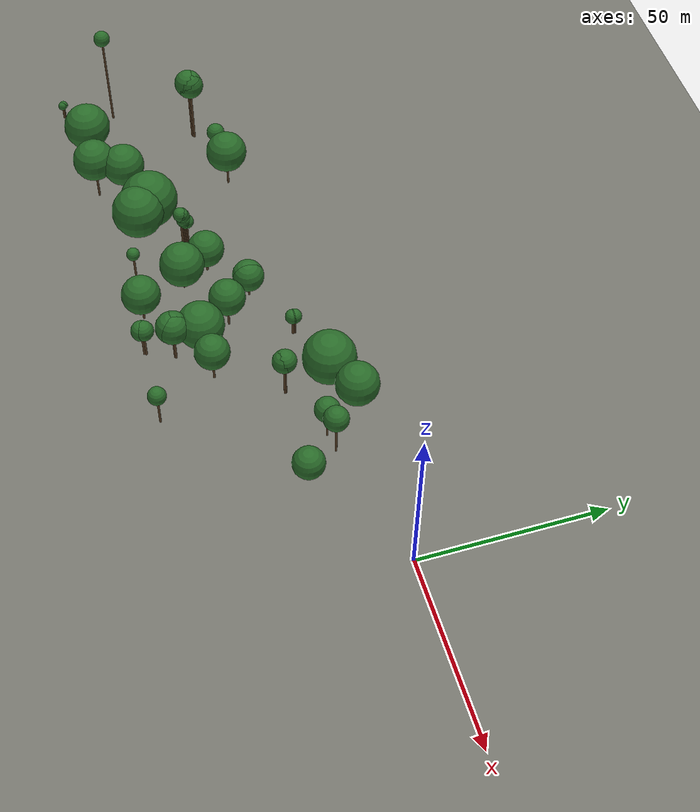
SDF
<sdf version="1.9">
 <world name="uav_arena_bk">
  <model name="ground_plane">
   <static>true</static>
   <link name="link">
    <collision name="collision">
     <geometry><plane><normal>0 0 1</normal><size>1200 1200</size></plane></geometry>
    </collision>
    <visual name="visual">
     <geometry><plane><normal>0 0 1</normal><size>1200 1200</size></plane></geometry>
     <material><ambient>0.35 0.35 0.33 1</ambient><diffuse>0.45 0.45 0.42 1</diffuse></material>
    </visual>
   </link>
  </model>
  <model name="tree_135">
   <static>true</static>
   <pose>-48.400 0.896 0 0 0 0</pose>
   <link name="link">
    <collision name="trunk_collision">
     <pose>0 0 0.995 0 0 0</pose>
     <geometry><cylinder><radius>0.30</radius><length>1.990</length></cylinder></geometry>
    </collision>
    <visual name="trunk_visual">
     <pose>0 0 0.995 0 0 0</pose>
     <geometry><cylinder><radius>0.30</radius><length>1.990</length></cylinder></geometry>
     <material><ambient>0.25 0.18 0.11 1</ambient><diffuse>0.35 0.25 0.15 1</diffuse></material>
    </visual>
    <collision name="canopy_collision">
     <pose>0 0 7.830 0 0 0</pose>
     <geometry><sphere><radius>5.840</radius></sphere></geometry>
    </collision>
    <visual name="canopy_visual">
     <pose>0 0 7.830 0 0 0</pose>
     <geometry><sphere><radius>5.840</radius></sphere></geometry>
     <material><ambient>0.10 0.28 0.10 1</ambient><diffuse>0.16 0.42 0.16 1</diffuse></material>
     <plugin filename="gz-sim-label-system" name="gz::sim::systems::Label"><label>2</label></plugin>
    </visual>
   </link>
  </model>
  <model name="tree_145">
   <static>true</static>
   <pose>-58.174 -3.552 0 0 0 0</pose>
   <link name="link">
    <collision name="trunk_collision">
     <pose>0 0 0.520 0 0 0</pose>
     <geometry><cylinder><radius>0.30</radius><length>1.040</length></cylinder></geometry>
    </collision>
    <visual name="trunk_visual">
     <pose>0 0 0.520 0 0 0</pose>
     <geometry><cylinder><radius>0.30</radius><length>1.040</length></cylinder></geometry>
     <material><ambient>0.25 0.18 0.11 1</ambient><diffuse>0.35 0.25 0.15 1</diffuse></material>
    </visual>
    <collision name="canopy_collision">
     <pose>0 0 8.200 0 0 0</pose>
     <geometry><sphere><radius>7.160</radius></sphere></geometry>
    </collision>
    <visual name="canopy_visual">
     <pose>0 0 8.200 0 0 0</pose>
     <geometry><sphere><radius>7.160</radius></sphere></geometry>
     <material><ambient>0.10 0.28 0.10 1</ambient><diffuse>0.16 0.42 0.16 1</diffuse></material>
     <plugin filename="gz-sim-label-system" name="gz::sim::systems::Label"><label>2</label></plugin>
    </visual>
   </link>
  </model>
  <model name="tree_151">
   <static>true</static>
   <pose>-74.450 -8.213 0 0 0 0</pose>
   <link name="link">
    <collision name="trunk_collision">
     <pose>0 0 2.480 0 0 0</pose>
     <geometry><cylinder><radius>0.30</radius><length>4.960</length></cylinder></geometry>
    </collision>
    <visual name="trunk_visual">
     <pose>0 0 2.480 0 0 0</pose>
     <geometry><cylinder><radius>0.30</radius><length>4.960</length></cylinder></geometry>
     <material><ambient>0.25 0.18 0.11 1</ambient><diffuse>0.35 0.25 0.15 1</diffuse></material>
    </visual>
    <collision name="canopy_collision">
     <pose>0 0 6.960 0 0 0</pose>
     <geometry><sphere><radius>2.000</radius></sphere></geometry>
    </collision>
    <visual name="canopy_visual">
     <pose>0 0 6.960 0 0 0</pose>
     <geometry><sphere><radius>2.000</radius></sphere></geometry>
     <material><ambient>0.10 0.28 0.10 1</ambient><diffuse>0.16 0.42 0.16 1</diffuse></material>
     <plugin filename="gz-sim-label-system" name="gz::sim::systems::Label"><label>2</label></plugin>
    </visual>
   </link>
  </model>
  <model name="tree_152">
   <static>true</static>
   <pose>-74.451 -8.463 0 0 0 0</pose>
   <link name="link">
    <collision name="trunk_collision">
     <pose>0 0 2.480 0 0 0</pose>
     <geometry><cylinder><radius>0.30</radius><length>4.960</length></cylinder></geometry>
    </collision>
    <visual name="trunk_visual">
     <pose>0 0 2.480 0 0 0</pose>
     <geometry><cylinder><radius>0.30</radius><length>4.960</length></cylinder></geometry>
     <material><ambient>0.25 0.18 0.11 1</ambient><diffuse>0.35 0.25 0.15 1</diffuse></material>
    </visual>
    <collision name="canopy_collision">
     <pose>0 0 6.960 0 0 0</pose>
     <geometry><sphere><radius>2.000</radius></sphere></geometry>
    </collision>
    <visual name="canopy_visual">
     <pose>0 0 6.960 0 0 0</pose>
     <geometry><sphere><radius>2.000</radius></sphere></geometry>
     <material><ambient>0.10 0.28 0.10 1</ambient><diffuse>0.16 0.42 0.16 1</diffuse></material>
     <plugin filename="gz-sim-label-system" name="gz::sim::systems::Label"><label>2</label></plugin>
    </visual>
   </link>
  </model>
  <model name="tree_153">
   <static>true</static>
   <pose>-35.452 -8.675 0 0 0 0</pose>
   <link name="link">
    <collision name="trunk_collision">
     <pose>0 0 5.345 0 0 0</pose>
     <geometry><cylinder><radius>0.30</radius><length>10.690</length></cylinder></geometry>
    </collision>
    <visual name="trunk_visual">
     <pose>0 0 5.345 0 0 0</pose>
     <geometry><cylinder><radius>0.30</radius><length>10.690</length></cylinder></geometry>
     <material><ambient>0.25 0.18 0.11 1</ambient><diffuse>0.35 0.25 0.15 1</diffuse></material>
    </visual>
    <collision name="canopy_collision">
     <pose>0 0 14.040 0 0 0</pose>
     <geometry><sphere><radius>3.350</radius></sphere></geometry>
    </collision>
    <visual name="canopy_visual">
     <pose>0 0 14.040 0 0 0</pose>
     <geometry><sphere><radius>3.350</radius></sphere></geometry>
     <material><ambient>0.10 0.28 0.10 1</ambient><diffuse>0.16 0.42 0.16 1</diffuse></material>
     <plugin filename="gz-sim-label-system" name="gz::sim::systems::Label"><label>2</label></plugin>
    </visual>
   </link>
  </model>
  <model name="tree_154">
   <static>true</static>
   <pose>-74.452 -8.713 0 0 0 0</pose>
   <link name="link">
    <collision name="trunk_collision">
     <pose>0 0 2.480 0 0 0</pose>
     <geometry><cylinder><radius>0.30</radius><length>4.960</length></cylinder></geometry>
    </collision>
    <visual name="trunk_visual">
     <pose>0 0 2.480 0 0 0</pose>
     <geometry><cylinder><radius>0.30</radius><length>4.960</length></cylinder></geometry>
     <material><ambient>0.25 0.18 0.11 1</ambient><diffuse>0.35 0.25 0.15 1</diffuse></material>
    </visual>
    <collision name="canopy_collision">
     <pose>0 0 6.960 0 0 0</pose>
     <geometry><sphere><radius>2.000</radius></sphere></geometry>
    </collision>
    <visual name="canopy_visual">
     <pose>0 0 6.960 0 0 0</pose>
     <geometry><sphere><radius>2.000</radius></sphere></geometry>
     <material><ambient>0.10 0.28 0.10 1</ambient><diffuse>0.16 0.42 0.16 1</diffuse></material>
     <plugin filename="gz-sim-label-system" name="gz::sim::systems::Label"><label>2</label></plugin>
    </visual>
   </link>
  </model>
  <model name="tree_156">
   <static>true</static>
   <pose>-40.706 -9.396 0 0 0 0</pose>
   <link name="link">
    <collision name="trunk_collision">
     <pose>0 0 3.870 0 0 0</pose>
     <geometry><cylinder><radius>0.30</radius><length>7.740</length></cylinder></geometry>
    </collision>
    <visual name="trunk_visual">
     <pose>0 0 3.870 0 0 0</pose>
     <geometry><cylinder><radius>0.30</radius><length>7.740</length></cylinder></geometry>
     <material><ambient>0.25 0.18 0.11 1</ambient><diffuse>0.35 0.25 0.15 1</diffuse></material>
    </visual>
    <collision name="canopy_collision">
     <pose>0 0 11.090 0 0 0</pose>
     <geometry><sphere><radius>3.350</radius></sphere></geometry>
    </collision>
    <visual name="canopy_visual">
     <pose>0 0 11.090 0 0 0</pose>
     <geometry><sphere><radius>3.350</radius></sphere></geometry>
     <material><ambient>0.10 0.28 0.10 1</ambient><diffuse>0.16 0.42 0.16 1</diffuse></material>
     <plugin filename="gz-sim-label-system" name="gz::sim::systems::Label"><label>2</label></plugin>
    </visual>
   </link>
  </model>
  <model name="tree_157">
   <static>true</static>
   <pose>-132.217 -11.401 0 0 0 0</pose>
   <link name="link">
    <collision name="trunk_collision">
     <pose>0 0 3.365 0 0 0</pose>
     <geometry><cylinder><radius>0.30</radius><length>6.730</length></cylinder></geometry>
    </collision>
    <visual name="trunk_visual">
     <pose>0 0 3.365 0 0 0</pose>
     <geometry><cylinder><radius>0.30</radius><length>6.730</length></cylinder></geometry>
     <material><ambient>0.25 0.18 0.11 1</ambient><diffuse>0.35 0.25 0.15 1</diffuse></material>
    </visual>
    <collision name="canopy_collision">
     <pose>0 0 12.350 0 0 0</pose>
     <geometry><sphere><radius>5.620</radius></sphere></geometry>
    </collision>
    <visual name="canopy_visual">
     <pose>0 0 12.350 0 0 0</pose>
     <geometry><sphere><radius>5.620</radius></sphere></geometry>
     <material><ambient>0.10 0.28 0.10 1</ambient><diffuse>0.16 0.42 0.16 1</diffuse></material>
     <plugin filename="gz-sim-label-system" name="gz::sim::systems::Label"><label>2</label></plugin>
    </visual>
   </link>
  </model>
  <model name="tree_158">
   <static>true</static>
   <pose>-141.971 -12.098 0 0 0 0</pose>
   <link name="link">
    <collision name="trunk_collision">
     <pose>0 0 4.155 0 0 0</pose>
     <geometry><cylinder><radius>0.30</radius><length>8.310</length></cylinder></geometry>
    </collision>
    <visual name="trunk_visual">
     <pose>0 0 4.155 0 0 0</pose>
     <geometry><cylinder><radius>0.30</radius><length>8.310</length></cylinder></geometry>
     <material><ambient>0.25 0.18 0.11 1</ambient><diffuse>0.35 0.25 0.15 1</diffuse></material>
    </visual>
    <collision name="canopy_collision">
     <pose>0 0 10.810 0 0 0</pose>
     <geometry><sphere><radius>2.500</radius></sphere></geometry>
    </collision>
    <visual name="canopy_visual">
     <pose>0 0 10.810 0 0 0</pose>
     <geometry><sphere><radius>2.500</radius></sphere></geometry>
     <material><ambient>0.10 0.28 0.10 1</ambient><diffuse>0.16 0.42 0.16 1</diffuse></material>
     <plugin filename="gz-sim-label-system" name="gz::sim::systems::Label"><label>2</label></plugin>
    </visual>
   </link>
  </model>
  <model name="tree_162">
   <static>true</static>
   <pose>-56.241 -15.812 0 0 0 0</pose>
   <link name="link">
    <collision name="trunk_collision">
     <pose>0 0 5.230 0 0 0</pose>
     <geometry><cylinder><radius>0.30</radius><length>10.460</length></cylinder></geometry>
    </collision>
    <visual name="trunk_visual">
     <pose>0 0 5.230 0 0 0</pose>
     <geometry><cylinder><radius>0.30</radius><length>10.460</length></cylinder></geometry>
     <material><ambient>0.25 0.18 0.11 1</ambient><diffuse>0.35 0.25 0.15 1</diffuse></material>
    </visual>
    <collision name="canopy_collision">
     <pose>0 0 13.590 0 0 0</pose>
     <geometry><sphere><radius>3.130</radius></sphere></geometry>
    </collision>
    <visual name="canopy_visual">
     <pose>0 0 13.590 0 0 0</pose>
     <geometry><sphere><radius>3.130</radius></sphere></geometry>
     <material><ambient>0.10 0.28 0.10 1</ambient><diffuse>0.16 0.42 0.16 1</diffuse></material>
     <plugin filename="gz-sim-label-system" name="gz::sim::systems::Label"><label>2</label></plugin>
    </visual>
   </link>
  </model>
  <model name="tree_163">
   <static>true</static>
   <pose>-56.242 -16.062 0 0 0 0</pose>
   <link name="link">
    <collision name="trunk_collision">
     <pose>0 0 5.175 0 0 0</pose>
     <geometry><cylinder><radius>0.30</radius><length>10.350</length></cylinder></geometry>
    </collision>
    <visual name="trunk_visual">
     <pose>0 0 5.175 0 0 0</pose>
     <geometry><cylinder><radius>0.30</radius><length>10.350</length></cylinder></geometry>
     <material><ambient>0.25 0.18 0.11 1</ambient><diffuse>0.35 0.25 0.15 1</diffuse></material>
    </visual>
    <collision name="canopy_collision">
     <pose>0 0 13.480 0 0 0</pose>
     <geometry><sphere><radius>3.130</radius></sphere></geometry>
    </collision>
    <visual name="canopy_visual">
     <pose>0 0 13.480 0 0 0</pose>
     <geometry><sphere><radius>3.130</radius></sphere></geometry>
     <material><ambient>0.10 0.28 0.10 1</ambient><diffuse>0.16 0.42 0.16 1</diffuse></material>
     <plugin filename="gz-sim-label-system" name="gz::sim::systems::Label"><label>2</label></plugin>
    </visual>
   </link>
  </model>
  <model name="tree_164">
   <static>true</static>
   <pose>-90.744 -16.375 0 0 0 0</pose>
   <link name="link">
    <collision name="trunk_collision">
     <pose>0 0 1.780 0 0 0</pose>
     <geometry><cylinder><radius>0.30</radius><length>3.560</length></cylinder></geometry>
    </collision>
    <visual name="trunk_visual">
     <pose>0 0 1.780 0 0 0</pose>
     <geometry><cylinder><radius>0.30</radius><length>3.560</length></cylinder></geometry>
     <material><ambient>0.25 0.18 0.11 1</ambient><diffuse>0.35 0.25 0.15 1</diffuse></material>
    </visual>
    <collision name="canopy_collision">
     <pose>0 0 7.830 0 0 0</pose>
     <geometry><sphere><radius>4.270</radius></sphere></geometry>
    </collision>
    <visual name="canopy_visual">
     <pose>0 0 7.830 0 0 0</pose>
     <geometry><sphere><radius>4.270</radius></sphere></geometry>
     <material><ambient>0.10 0.28 0.10 1</ambient><diffuse>0.16 0.42 0.16 1</diffuse></material>
     <plugin filename="gz-sim-label-system" name="gz::sim::systems::Label"><label>2</label></plugin>
    </visual>
   </link>
  </model>
  <model name="tree_165">
   <static>true</static>
   <pose>-90.494 -16.377 0 0 0 0</pose>
   <link name="link">
    <collision name="trunk_collision">
     <pose>0 0 1.780 0 0 0</pose>
     <geometry><cylinder><radius>0.30</radius><length>3.560</length></cylinder></geometry>
    </collision>
    <visual name="trunk_visual">
     <pose>0 0 1.780 0 0 0</pose>
     <geometry><cylinder><radius>0.30</radius><length>3.560</length></cylinder></geometry>
     <material><ambient>0.25 0.18 0.11 1</ambient><diffuse>0.35 0.25 0.15 1</diffuse></material>
    </visual>
    <collision name="canopy_collision">
     <pose>0 0 7.830 0 0 0</pose>
     <geometry><sphere><radius>4.270</radius></sphere></geometry>
    </collision>
    <visual name="canopy_visual">
     <pose>0 0 7.830 0 0 0</pose>
     <geometry><sphere><radius>4.270</radius></sphere></geometry>
     <material><ambient>0.10 0.28 0.10 1</ambient><diffuse>0.16 0.42 0.16 1</diffuse></material>
     <plugin filename="gz-sim-label-system" name="gz::sim::systems::Label"><label>2</label></plugin>
    </visual>
   </link>
  </model>
  <model name="tree_166">
   <static>true</static>
   <pose>-152.744 -16.290 0 0 0 0</pose>
   <link name="link">
    <collision name="trunk_collision">
     <pose>0 0 8.210 0 0 0</pose>
     <geometry><cylinder><radius>0.30</radius><length>16.420</length></cylinder></geometry>
    </collision>
    <visual name="trunk_visual">
     <pose>0 0 8.210 0 0 0</pose>
     <geometry><cylinder><radius>0.30</radius><length>16.420</length></cylinder></geometry>
     <material><ambient>0.25 0.18 0.11 1</ambient><diffuse>0.35 0.25 0.15 1</diffuse></material>
    </visual>
    <collision name="canopy_collision">
     <pose>0 0 20.140 0 0 0</pose>
     <geometry><sphere><radius>3.720</radius></sphere></geometry>
    </collision>
    <visual name="canopy_visual">
     <pose>0 0 20.140 0 0 0</pose>
     <geometry><sphere><radius>3.720</radius></sphere></geometry>
     <material><ambient>0.10 0.28 0.10 1</ambient><diffuse>0.16 0.42 0.16 1</diffuse></material>
     <plugin filename="gz-sim-label-system" name="gz::sim::systems::Label"><label>2</label></plugin>
    </visual>
   </link>
  </model>
  <model name="tree_167">
   <static>true</static>
   <pose>-153.245 -16.537 0 0 0 0</pose>
   <link name="link">
    <collision name="trunk_collision">
     <pose>0 0 8.450 0 0 0</pose>
     <geometry><cylinder><radius>0.30</radius><length>16.900</length></cylinder></geometry>
    </collision>
    <visual name="trunk_visual">
     <pose>0 0 8.450 0 0 0</pose>
     <geometry><cylinder><radius>0.30</radius><length>16.900</length></cylinder></geometry>
     <material><ambient>0.25 0.18 0.11 1</ambient><diffuse>0.35 0.25 0.15 1</diffuse></material>
    </visual>
    <collision name="canopy_collision">
     <pose>0 0 20.620 0 0 0</pose>
     <geometry><sphere><radius>3.720</radius></sphere></geometry>
    </collision>
    <visual name="canopy_visual">
     <pose>0 0 20.620 0 0 0</pose>
     <geometry><sphere><radius>3.720</radius></sphere></geometry>
     <material><ambient>0.10 0.28 0.10 1</ambient><diffuse>0.16 0.42 0.16 1</diffuse></material>
     <plugin filename="gz-sim-label-system" name="gz::sim::systems::Label"><label>2</label></plugin>
    </visual>
   </link>
  </model>
  <model name="tree_168">
   <static>true</static>
   <pose>-152.995 -16.538 0 0 0 0</pose>
   <link name="link">
    <collision name="trunk_collision">
     <pose>0 0 8.420 0 0 0</pose>
     <geometry><cylinder><radius>0.30</radius><length>16.840</length></cylinder></geometry>
    </collision>
    <visual name="trunk_visual">
     <pose>0 0 8.420 0 0 0</pose>
     <geometry><cylinder><radius>0.30</radius><length>16.840</length></cylinder></geometry>
     <material><ambient>0.25 0.18 0.11 1</ambient><diffuse>0.35 0.25 0.15 1</diffuse></material>
    </visual>
    <collision name="canopy_collision">
     <pose>0 0 20.560 0 0 0</pose>
     <geometry><sphere><radius>3.720</radius></sphere></geometry>
    </collision>
    <visual name="canopy_visual">
     <pose>0 0 20.560 0 0 0</pose>
     <geometry><sphere><radius>3.720</radius></sphere></geometry>
     <material><ambient>0.10 0.28 0.10 1</ambient><diffuse>0.16 0.42 0.16 1</diffuse></material>
     <plugin filename="gz-sim-label-system" name="gz::sim::systems::Label"><label>2</label></plugin>
    </visual>
   </link>
  </model>
  <model name="tree_169">
   <static>true</static>
   <pose>-30.498 -17.202 0 0 0 0</pose>
   <link name="link">
    <collision name="trunk_collision">
     <pose>0 0 0.590 0 0 0</pose>
     <geometry><cylinder><radius>0.30</radius><length>1.180</length></cylinder></geometry>
    </collision>
    <visual name="trunk_visual">
     <pose>0 0 0.590 0 0 0</pose>
     <geometry><cylinder><radius>0.30</radius><length>1.180</length></cylinder></geometry>
     <material><ambient>0.25 0.18 0.11 1</ambient><diffuse>0.35 0.25 0.15 1</diffuse></material>
    </visual>
    <collision name="canopy_collision">
     <pose>0 0 5.480 0 0 0</pose>
     <geometry><sphere><radius>4.300</radius></sphere></geometry>
    </collision>
    <visual name="canopy_visual">
     <pose>0 0 5.480 0 0 0</pose>
     <geometry><sphere><radius>4.300</radius></sphere></geometry>
     <material><ambient>0.10 0.28 0.10 1</ambient><diffuse>0.16 0.42 0.16 1</diffuse></material>
     <plugin filename="gz-sim-label-system" name="gz::sim::systems::Label"><label>2</label></plugin>
    </visual>
   </link>
  </model>
  <model name="tree_170">
   <static>true</static>
   <pose>-153.247 -16.787 0 0 0 0</pose>
   <link name="link">
    <collision name="trunk_collision">
     <pose>0 0 8.500 0 0 0</pose>
     <geometry><cylinder><radius>0.30</radius><length>17.000</length></cylinder></geometry>
    </collision>
    <visual name="trunk_visual">
     <pose>0 0 8.500 0 0 0</pose>
     <geometry><cylinder><radius>0.30</radius><length>17.000</length></cylinder></geometry>
     <material><ambient>0.25 0.18 0.11 1</ambient><diffuse>0.35 0.25 0.15 1</diffuse></material>
    </visual>
    <collision name="canopy_collision">
     <pose>0 0 20.720 0 0 0</pose>
     <geometry><sphere><radius>3.720</radius></sphere></geometry>
    </collision>
    <visual name="canopy_visual">
     <pose>0 0 20.720 0 0 0</pose>
     <geometry><sphere><radius>3.720</radius></sphere></geometry>
     <material><ambient>0.10 0.28 0.10 1</ambient><diffuse>0.16 0.42 0.16 1</diffuse></material>
     <plugin filename="gz-sim-label-system" name="gz::sim::systems::Label"><label>2</label></plugin>
    </visual>
   </link>
  </model>
  <model name="tree_175">
   <static>true</static>
   <pose>-82.286 -24.171 0 0 0 0</pose>
   <link name="link">
    <collision name="trunk_collision">
     <pose>0 0 3.145 0 0 0</pose>
     <geometry><cylinder><radius>0.30</radius><length>6.290</length></cylinder></geometry>
    </collision>
    <visual name="trunk_visual">
     <pose>0 0 3.145 0 0 0</pose>
     <geometry><cylinder><radius>0.30</radius><length>6.290</length></cylinder></geometry>
     <material><ambient>0.25 0.18 0.11 1</ambient><diffuse>0.35 0.25 0.15 1</diffuse></material>
    </visual>
    <collision name="canopy_collision">
     <pose>0 0 11.210 0 0 0</pose>
     <geometry><sphere><radius>4.920</radius></sphere></geometry>
    </collision>
    <visual name="canopy_visual">
     <pose>0 0 11.210 0 0 0</pose>
     <geometry><sphere><radius>4.920</radius></sphere></geometry>
     <material><ambient>0.10 0.28 0.10 1</ambient><diffuse>0.16 0.42 0.16 1</diffuse></material>
     <plugin filename="gz-sim-label-system" name="gz::sim::systems::Label"><label>2</label></plugin>
    </visual>
   </link>
  </model>
  <model name="tree_176">
   <static>true</static>
   <pose>-102.291 -25.063 0 0 0 0</pose>
   <link name="link">
    <collision name="trunk_collision">
     <pose>0 0 1.795 0 0 0</pose>
     <geometry><cylinder><radius>0.30</radius><length>3.590</length></cylinder></geometry>
    </collision>
    <visual name="trunk_visual">
     <pose>0 0 1.795 0 0 0</pose>
     <geometry><cylinder><radius>0.30</radius><length>3.590</length></cylinder></geometry>
     <material><ambient>0.25 0.18 0.11 1</ambient><diffuse>0.35 0.25 0.15 1</diffuse></material>
    </visual>
    <collision name="canopy_collision">
     <pose>0 0 8.590 0 0 0</pose>
     <geometry><sphere><radius>5.000</radius></sphere></geometry>
    </collision>
    <visual name="canopy_visual">
     <pose>0 0 8.590 0 0 0</pose>
     <geometry><sphere><radius>5.000</radius></sphere></geometry>
     <material><ambient>0.10 0.28 0.10 1</ambient><diffuse>0.16 0.42 0.16 1</diffuse></material>
     <plugin filename="gz-sim-label-system" name="gz::sim::systems::Label"><label>2</label></plugin>
    </visual>
   </link>
  </model>
  <model name="tree_180">
   <static>true</static>
   <pose>-113.056 -27.755 0 0 0 0</pose>
   <link name="link">
    <collision name="trunk_collision">
     <pose>0 0 3.445 0 0 0</pose>
     <geometry><cylinder><radius>0.30</radius><length>6.890</length></cylinder></geometry>
    </collision>
    <visual name="trunk_visual">
     <pose>0 0 3.445 0 0 0</pose>
     <geometry><cylinder><radius>0.30</radius><length>6.890</length></cylinder></geometry>
     <material><ambient>0.25 0.18 0.11 1</ambient><diffuse>0.35 0.25 0.15 1</diffuse></material>
    </visual>
    <collision name="canopy_collision">
     <pose>0 0 8.890 0 0 0</pose>
     <geometry><sphere><radius>2.000</radius></sphere></geometry>
    </collision>
    <visual name="canopy_visual">
     <pose>0 0 8.890 0 0 0</pose>
     <geometry><sphere><radius>2.000</radius></sphere></geometry>
     <material><ambient>0.10 0.28 0.10 1</ambient><diffuse>0.16 0.42 0.16 1</diffuse></material>
     <plugin filename="gz-sim-label-system" name="gz::sim::systems::Label"><label>2</label></plugin>
    </visual>
   </link>
  </model>
  <model name="tree_181">
   <static>true</static>
   <pose>-113.057 -28.005 0 0 0 0</pose>
   <link name="link">
    <collision name="trunk_collision">
     <pose>0 0 3.490 0 0 0</pose>
     <geometry><cylinder><radius>0.30</radius><length>6.980</length></cylinder></geometry>
    </collision>
    <visual name="trunk_visual">
     <pose>0 0 3.490 0 0 0</pose>
     <geometry><cylinder><radius>0.30</radius><length>6.980</length></cylinder></geometry>
     <material><ambient>0.25 0.18 0.11 1</ambient><diffuse>0.35 0.25 0.15 1</diffuse></material>
    </visual>
    <collision name="canopy_collision">
     <pose>0 0 8.980 0 0 0</pose>
     <geometry><sphere><radius>2.000</radius></sphere></geometry>
    </collision>
    <visual name="canopy_visual">
     <pose>0 0 8.980 0 0 0</pose>
     <geometry><sphere><radius>2.000</radius></sphere></geometry>
     <material><ambient>0.10 0.28 0.10 1</ambient><diffuse>0.16 0.42 0.16 1</diffuse></material>
     <plugin filename="gz-sim-label-system" name="gz::sim::systems::Label"><label>2</label></plugin>
    </visual>
   </link>
  </model>
  <model name="tree_182">
   <static>true</static>
   <pose>-113.058 -28.255 0 0 0 0</pose>
   <link name="link">
    <collision name="trunk_collision">
     <pose>0 0 3.640 0 0 0</pose>
     <geometry><cylinder><radius>0.30</radius><length>7.280</length></cylinder></geometry>
    </collision>
    <visual name="trunk_visual">
     <pose>0 0 3.640 0 0 0</pose>
     <geometry><cylinder><radius>0.30</radius><length>7.280</length></cylinder></geometry>
     <material><ambient>0.25 0.18 0.11 1</ambient><diffuse>0.35 0.25 0.15 1</diffuse></material>
    </visual>
    <collision name="canopy_collision">
     <pose>0 0 9.280 0 0 0</pose>
     <geometry><sphere><radius>2.000</radius></sphere></geometry>
    </collision>
    <visual name="canopy_visual">
     <pose>0 0 9.280 0 0 0</pose>
     <geometry><sphere><radius>2.000</radius></sphere></geometry>
     <material><ambient>0.10 0.28 0.10 1</ambient><diffuse>0.16 0.42 0.16 1</diffuse></material>
     <plugin filename="gz-sim-label-system" name="gz::sim::systems::Label"><label>2</label></plugin>
    </visual>
   </link>
  </model>
  <model name="tree_184">
   <static>true</static>
   <pose>-113.060 -28.505 0 0 0 0</pose>
   <link name="link">
    <collision name="trunk_collision">
     <pose>0 0 3.920 0 0 0</pose>
     <geometry><cylinder><radius>0.30</radius><length>7.840</length></cylinder></geometry>
    </collision>
    <visual name="trunk_visual">
     <pose>0 0 3.920 0 0 0</pose>
     <geometry><cylinder><radius>0.30</radius><length>7.840</length></cylinder></geometry>
     <material><ambient>0.25 0.18 0.11 1</ambient><diffuse>0.35 0.25 0.15 1</diffuse></material>
    </visual>
    <collision name="canopy_collision">
     <pose>0 0 9.840 0 0 0</pose>
     <geometry><sphere><radius>2.000</radius></sphere></geometry>
    </collision>
    <visual name="canopy_visual">
     <pose>0 0 9.840 0 0 0</pose>
     <geometry><sphere><radius>2.000</radius></sphere></geometry>
     <material><ambient>0.10 0.28 0.10 1</ambient><diffuse>0.16 0.42 0.16 1</diffuse></material>
     <plugin filename="gz-sim-label-system" name="gz::sim::systems::Label"><label>2</label></plugin>
    </visual>
   </link>
  </model>
  <model name="tree_185">
   <static>true</static>
   <pose>-113.061 -28.755 0 0 0 0</pose>
   <link name="link">
    <collision name="trunk_collision">
     <pose>0 0 4.780 0 0 0</pose>
     <geometry><cylinder><radius>0.30</radius><length>9.560</length></cylinder></geometry>
    </collision>
    <visual name="trunk_visual">
     <pose>0 0 4.780 0 0 0</pose>
     <geometry><cylinder><radius>0.30</radius><length>9.560</length></cylinder></geometry>
     <material><ambient>0.25 0.18 0.11 1</ambient><diffuse>0.35 0.25 0.15 1</diffuse></material>
    </visual>
    <collision name="canopy_collision">
     <pose>0 0 11.560 0 0 0</pose>
     <geometry><sphere><radius>2.000</radius></sphere></geometry>
    </collision>
    <visual name="canopy_visual">
     <pose>0 0 11.560 0 0 0</pose>
     <geometry><sphere><radius>2.000</radius></sphere></geometry>
     <material><ambient>0.10 0.28 0.10 1</ambient><diffuse>0.16 0.42 0.16 1</diffuse></material>
     <plugin filename="gz-sim-label-system" name="gz::sim::systems::Label"><label>2</label></plugin>
    </visual>
   </link>
  </model>
  <model name="tree_186">
   <static>true</static>
   <pose>-113.062 -29.005 0 0 0 0</pose>
   <link name="link">
    <collision name="trunk_collision">
     <pose>0 0 4.985 0 0 0</pose>
     <geometry><cylinder><radius>0.30</radius><length>9.970</length></cylinder></geometry>
    </collision>
    <visual name="trunk_visual">
     <pose>0 0 4.985 0 0 0</pose>
     <geometry><cylinder><radius>0.30</radius><length>9.970</length></cylinder></geometry>
     <material><ambient>0.25 0.18 0.11 1</ambient><diffuse>0.35 0.25 0.15 1</diffuse></material>
    </visual>
    <collision name="canopy_collision">
     <pose>0 0 11.970 0 0 0</pose>
     <geometry><sphere><radius>2.000</radius></sphere></geometry>
    </collision>
    <visual name="canopy_visual">
     <pose>0 0 11.970 0 0 0</pose>
     <geometry><sphere><radius>2.000</radius></sphere></geometry>
     <material><ambient>0.10 0.28 0.10 1</ambient><diffuse>0.16 0.42 0.16 1</diffuse></material>
     <plugin filename="gz-sim-label-system" name="gz::sim::systems::Label"><label>2</label></plugin>
    </visual>
   </link>
  </model>
  <model name="tree_187">
   <static>true</static>
   <pose>-113.064 -29.255 0 0 0 0</pose>
   <link name="link">
    <collision name="trunk_collision">
     <pose>0 0 5.070 0 0 0</pose>
     <geometry><cylinder><radius>0.30</radius><length>10.140</length></cylinder></geometry>
    </collision>
    <visual name="trunk_visual">
     <pose>0 0 5.070 0 0 0</pose>
     <geometry><cylinder><radius>0.30</radius><length>10.140</length></cylinder></geometry>
     <material><ambient>0.25 0.18 0.11 1</ambient><diffuse>0.35 0.25 0.15 1</diffuse></material>
    </visual>
    <collision name="canopy_collision">
     <pose>0 0 12.140 0 0 0</pose>
     <geometry><sphere><radius>2.000</radius></sphere></geometry>
    </collision>
    <visual name="canopy_visual">
     <pose>0 0 12.140 0 0 0</pose>
     <geometry><sphere><radius>2.000</radius></sphere></geometry>
     <material><ambient>0.10 0.28 0.10 1</ambient><diffuse>0.16 0.42 0.16 1</diffuse></material>
     <plugin filename="gz-sim-label-system" name="gz::sim::systems::Label"><label>2</label></plugin>
    </visual>
   </link>
  </model>
  <model name="tree_189">
   <static>true</static>
   <pose>-66.330 -32.258 0 0 0 0</pose>
   <link name="link">
    <collision name="trunk_collision">
     <pose>0 0 3.085 0 0 0</pose>
     <geometry><cylinder><radius>0.30</radius><length>6.170</length></cylinder></geometry>
    </collision>
    <visual name="trunk_visual">
     <pose>0 0 3.085 0 0 0</pose>
     <geometry><cylinder><radius>0.30</radius><length>6.170</length></cylinder></geometry>
     <material><ambient>0.25 0.18 0.11 1</ambient><diffuse>0.35 0.25 0.15 1</diffuse></material>
    </visual>
    <collision name="canopy_collision">
     <pose>0 0 10.890 0 0 0</pose>
     <geometry><sphere><radius>4.720</radius></sphere></geometry>
    </collision>
    <visual name="canopy_visual">
     <pose>0 0 10.890 0 0 0</pose>
     <geometry><sphere><radius>4.720</radius></sphere></geometry>
     <material><ambient>0.10 0.28 0.10 1</ambient><diffuse>0.16 0.42 0.16 1</diffuse></material>
     <plugin filename="gz-sim-label-system" name="gz::sim::systems::Label"><label>2</label></plugin>
    </visual>
   </link>
  </model>
  <model name="tree_190">
   <static>true</static>
   <pose>-98.082 -32.586 0 0 0 0</pose>
   <link name="link">
    <collision name="trunk_collision">
     <pose>0 0 1.690 0 0 0</pose>
     <geometry><cylinder><radius>0.30</radius><length>3.380</length></cylinder></geometry>
    </collision>
    <visual name="trunk_visual">
     <pose>0 0 1.690 0 0 0</pose>
     <geometry><cylinder><radius>0.30</radius><length>3.380</length></cylinder></geometry>
     <material><ambient>0.25 0.18 0.11 1</ambient><diffuse>0.35 0.25 0.15 1</diffuse></material>
    </visual>
    <collision name="canopy_collision">
     <pose>0 0 9.430 0 0 0</pose>
     <geometry><sphere><radius>6.050</radius></sphere></geometry>
    </collision>
    <visual name="canopy_visual">
     <pose>0 0 9.430 0 0 0</pose>
     <geometry><sphere><radius>6.050</radius></sphere></geometry>
     <material><ambient>0.10 0.28 0.10 1</ambient><diffuse>0.16 0.42 0.16 1</diffuse></material>
     <plugin filename="gz-sim-label-system" name="gz::sim::systems::Label"><label>2</label></plugin>
    </visual>
   </link>
  </model>
  <model name="tree_192">
   <static>true</static>
   <pose>-75.834 -32.956 0 0 0 0</pose>
   <link name="link">
    <collision name="trunk_collision">
     <pose>0 0 2.105 0 0 0</pose>
     <geometry><cylinder><radius>0.30</radius><length>4.210</length></cylinder></geometry>
    </collision>
    <visual name="trunk_visual">
     <pose>0 0 2.105 0 0 0</pose>
     <geometry><cylinder><radius>0.30</radius><length>4.210</length></cylinder></geometry>
     <material><ambient>0.25 0.18 0.11 1</ambient><diffuse>0.35 0.25 0.15 1</diffuse></material>
    </visual>
    <collision name="canopy_collision">
     <pose>0 0 10.570 0 0 0</pose>
     <geometry><sphere><radius>6.360</radius></sphere></geometry>
    </collision>
    <visual name="canopy_visual">
     <pose>0 0 10.570 0 0 0</pose>
     <geometry><sphere><radius>6.360</radius></sphere></geometry>
     <material><ambient>0.10 0.28 0.10 1</ambient><diffuse>0.16 0.42 0.16 1</diffuse></material>
     <plugin filename="gz-sim-label-system" name="gz::sim::systems::Label"><label>2</label></plugin>
    </visual>
   </link>
  </model>
  <model name="tree_203">
   <static>true</static>
   <pose>-123.849 -35.696 0 0 0 0</pose>
   <link name="link">
    <collision name="trunk_collision">
     <pose>0 0 0.640 0 0 0</pose>
     <geometry><cylinder><radius>0.30</radius><length>1.280</length></cylinder></geometry>
    </collision>
    <visual name="trunk_visual">
     <pose>0 0 0.640 0 0 0</pose>
     <geometry><cylinder><radius>0.30</radius><length>1.280</length></cylinder></geometry>
     <material><ambient>0.25 0.18 0.11 1</ambient><diffuse>0.35 0.25 0.15 1</diffuse></material>
    </visual>
    <collision name="canopy_collision">
     <pose>0 0 9.170 0 0 0</pose>
     <geometry><sphere><radius>7.890</radius></sphere></geometry>
    </collision>
    <visual name="canopy_visual">
     <pose>0 0 9.170 0 0 0</pose>
     <geometry><sphere><radius>7.890</radius></sphere></geometry>
     <material><ambient>0.10 0.28 0.10 1</ambient><diffuse>0.16 0.42 0.16 1</diffuse></material>
     <plugin filename="gz-sim-label-system" name="gz::sim::systems::Label"><label>2</label></plugin>
    </visual>
   </link>
  </model>
  <model name="tree_207">
   <static>true</static>
   <pose>-167.109 -37.462 0 0 0 0</pose>
   <link name="link">
    <collision name="trunk_collision">
     <pose>0 0 14.125 0 0 0</pose>
     <geometry><cylinder><radius>0.30</radius><length>28.250</length></cylinder></geometry>
    </collision>
    <visual name="trunk_visual">
     <pose>0 0 14.125 0 0 0</pose>
     <geometry><cylinder><radius>0.30</radius><length>28.250</length></cylinder></geometry>
     <material><ambient>0.25 0.18 0.11 1</ambient><diffuse>0.35 0.25 0.15 1</diffuse></material>
    </visual>
    <collision name="canopy_collision">
     <pose>0 0 30.510 0 0 0</pose>
     <geometry><sphere><radius>2.260</radius></sphere></geometry>
    </collision>
    <visual name="canopy_visual">
     <pose>0 0 30.510 0 0 0</pose>
     <geometry><sphere><radius>2.260</radius></sphere></geometry>
     <material><ambient>0.10 0.28 0.10 1</ambient><diffuse>0.16 0.42 0.16 1</diffuse></material>
     <plugin filename="gz-sim-label-system" name="gz::sim::systems::Label"><label>2</label></plugin>
    </visual>
   </link>
  </model>
  <model name="tree_210">
   <static>true</static>
   <pose>-119.121 -39.722 0 0 0 0</pose>
   <link name="link">
    <collision name="trunk_collision">
     <pose>0 0 1.565 0 0 0</pose>
     <geometry><cylinder><radius>0.30</radius><length>3.130</length></cylinder></geometry>
    </collision>
    <visual name="trunk_visual">
     <pose>0 0 1.565 0 0 0</pose>
     <geometry><cylinder><radius>0.30</radius><length>3.130</length></cylinder></geometry>
     <material><ambient>0.25 0.18 0.11 1</ambient><diffuse>0.35 0.25 0.15 1</diffuse></material>
    </visual>
    <collision name="canopy_collision">
     <pose>0 0 10.290 0 0 0</pose>
     <geometry><sphere><radius>7.160</radius></sphere></geometry>
    </collision>
    <visual name="canopy_visual">
     <pose>0 0 10.290 0 0 0</pose>
     <geometry><sphere><radius>7.160</radius></sphere></geometry>
     <material><ambient>0.10 0.28 0.10 1</ambient><diffuse>0.16 0.42 0.16 1</diffuse></material>
     <plugin filename="gz-sim-label-system" name="gz::sim::systems::Label"><label>2</label></plugin>
    </visual>
   </link>
  </model>
  <model name="tree_211">
   <static>true</static>
   <pose>-75.623 -40.207 0 0 0 0</pose>
   <link name="link">
    <collision name="trunk_collision">
     <pose>0 0 4.105 0 0 0</pose>
     <geometry><cylinder><radius>0.30</radius><length>8.210</length></cylinder></geometry>
    </collision>
    <visual name="trunk_visual">
     <pose>0 0 4.105 0 0 0</pose>
     <geometry><cylinder><radius>0.30</radius><length>8.210</length></cylinder></geometry>
     <material><ambient>0.25 0.18 0.11 1</ambient><diffuse>0.35 0.25 0.15 1</diffuse></material>
    </visual>
    <collision name="canopy_collision">
     <pose>0 0 12.530 0 0 0</pose>
     <geometry><sphere><radius>4.320</radius></sphere></geometry>
    </collision>
    <visual name="canopy_visual">
     <pose>0 0 12.530 0 0 0</pose>
     <geometry><sphere><radius>4.320</radius></sphere></geometry>
     <material><ambient>0.10 0.28 0.10 1</ambient><diffuse>0.16 0.42 0.16 1</diffuse></material>
     <plugin filename="gz-sim-label-system" name="gz::sim::systems::Label"><label>2</label></plugin>
    </visual>
   </link>
  </model>
  <model name="tree_212">
   <static>true</static>
   <pose>-75.373 -40.209 0 0 0 0</pose>
   <link name="link">
    <collision name="trunk_collision">
     <pose>0 0 4.105 0 0 0</pose>
     <geometry><cylinder><radius>0.30</radius><length>8.210</length></cylinder></geometry>
    </collision>
    <visual name="trunk_visual">
     <pose>0 0 4.105 0 0 0</pose>
     <geometry><cylinder><radius>0.30</radius><length>8.210</length></cylinder></geometry>
     <material><ambient>0.25 0.18 0.11 1</ambient><diffuse>0.35 0.25 0.15 1</diffuse></material>
    </visual>
    <collision name="canopy_collision">
     <pose>0 0 12.530 0 0 0</pose>
     <geometry><sphere><radius>4.320</radius></sphere></geometry>
    </collision>
    <visual name="canopy_visual">
     <pose>0 0 12.530 0 0 0</pose>
     <geometry><sphere><radius>4.320</radius></sphere></geometry>
     <material><ambient>0.10 0.28 0.10 1</ambient><diffuse>0.16 0.42 0.16 1</diffuse></material>
     <plugin filename="gz-sim-label-system" name="gz::sim::systems::Label"><label>2</label></plugin>
    </visual>
   </link>
  </model>
  <model name="tree_214">
   <static>true</static>
   <pose>-134.623 -40.138 0 0 0 0</pose>
   <link name="link">
    <collision name="trunk_collision">
     <pose>0 0 3.760 0 0 0</pose>
     <geometry><cylinder><radius>0.30</radius><length>7.520</length></cylinder></geometry>
    </collision>
    <visual name="trunk_visual">
     <pose>0 0 3.760 0 0 0</pose>
     <geometry><cylinder><radius>0.30</radius><length>7.520</length></cylinder></geometry>
     <material><ambient>0.25 0.18 0.11 1</ambient><diffuse>0.35 0.25 0.15 1</diffuse></material>
    </visual>
    <collision name="canopy_collision">
     <pose>0 0 13.280 0 0 0</pose>
     <geometry><sphere><radius>5.760</radius></sphere></geometry>
    </collision>
    <visual name="canopy_visual">
     <pose>0 0 13.280 0 0 0</pose>
     <geometry><sphere><radius>5.760</radius></sphere></geometry>
     <material><ambient>0.10 0.28 0.10 1</ambient><diffuse>0.16 0.42 0.16 1</diffuse></material>
     <plugin filename="gz-sim-label-system" name="gz::sim::systems::Label"><label>2</label></plugin>
    </visual>
   </link>
  </model>
  <model name="tree_215">
   <static>true</static>
   <pose>-75.624 -40.457 0 0 0 0</pose>
   <link name="link">
    <collision name="trunk_collision">
     <pose>0 0 4.100 0 0 0</pose>
     <geometry><cylinder><radius>0.30</radius><length>8.200</length></cylinder></geometry>
    </collision>
    <visual name="trunk_visual">
     <pose>0 0 4.100 0 0 0</pose>
     <geometry><cylinder><radius>0.30</radius><length>8.200</length></cylinder></geometry>
     <material><ambient>0.25 0.18 0.11 1</ambient><diffuse>0.35 0.25 0.15 1</diffuse></material>
    </visual>
    <collision name="canopy_collision">
     <pose>0 0 12.520 0 0 0</pose>
     <geometry><sphere><radius>4.320</radius></sphere></geometry>
    </collision>
    <visual name="canopy_visual">
     <pose>0 0 12.520 0 0 0</pose>
     <geometry><sphere><radius>4.320</radius></sphere></geometry>
     <material><ambient>0.10 0.28 0.10 1</ambient><diffuse>0.16 0.42 0.16 1</diffuse></material>
     <plugin filename="gz-sim-label-system" name="gz::sim::systems::Label"><label>2</label></plugin>
    </visual>
   </link>
  </model>
  <model name="tree_216">
   <static>true</static>
   <pose>-104.895 -44.299 0 0 0 0</pose>
   <link name="link">
    <collision name="trunk_collision">
     <pose>0 0 4.025 0 0 0</pose>
     <geometry><cylinder><radius>0.30</radius><length>8.050</length></cylinder></geometry>
    </collision>
    <visual name="trunk_visual">
     <pose>0 0 4.025 0 0 0</pose>
     <geometry><cylinder><radius>0.30</radius><length>8.050</length></cylinder></geometry>
     <material><ambient>0.25 0.18 0.11 1</ambient><diffuse>0.35 0.25 0.15 1</diffuse></material>
    </visual>
    <collision name="canopy_collision">
     <pose>0 0 9.850 0 0 0</pose>
     <geometry><sphere><radius>1.800</radius></sphere></geometry>
    </collision>
    <visual name="canopy_visual">
     <pose>0 0 9.850 0 0 0</pose>
     <geometry><sphere><radius>1.800</radius></sphere></geometry>
     <material><ambient>0.10 0.28 0.10 1</ambient><diffuse>0.16 0.42 0.16 1</diffuse></material>
     <plugin filename="gz-sim-label-system" name="gz::sim::systems::Label"><label>2</label></plugin>
    </visual>
   </link>
  </model>
  <model name="tree_217">
   <static>true</static>
   <pose>-90.651 -45.376 0 0 0 0</pose>
   <link name="link">
    <collision name="trunk_collision">
     <pose>0 0 2.290 0 0 0</pose>
     <geometry><cylinder><radius>0.30</radius><length>4.580</length></cylinder></geometry>
    </collision>
    <visual name="trunk_visual">
     <pose>0 0 2.290 0 0 0</pose>
     <geometry><cylinder><radius>0.30</radius><length>4.580</length></cylinder></geometry>
     <material><ambient>0.25 0.18 0.11 1</ambient><diffuse>0.35 0.25 0.15 1</diffuse></material>
    </visual>
    <collision name="canopy_collision">
     <pose>0 0 9.830 0 0 0</pose>
     <geometry><sphere><radius>5.250</radius></sphere></geometry>
    </collision>
    <visual name="canopy_visual">
     <pose>0 0 9.830 0 0 0</pose>
     <geometry><sphere><radius>5.250</radius></sphere></geometry>
     <material><ambient>0.10 0.28 0.10 1</ambient><diffuse>0.16 0.42 0.16 1</diffuse></material>
     <plugin filename="gz-sim-label-system" name="gz::sim::systems::Label"><label>2</label></plugin>
    </visual>
   </link>
  </model>
  <model name="tree_221">
   <static>true</static>
   <pose>-158.156 -46.261 0 0 0 0</pose>
   <link name="link">
    <collision name="trunk_collision">
     <pose>0 0 0.500 0 0 0</pose>
     <geometry><cylinder><radius>0.30</radius><length>1.000</length></cylinder></geometry>
    </collision>
    <visual name="trunk_visual">
     <pose>0 0 0.500 0 0 0</pose>
     <geometry><cylinder><radius>0.30</radius><length>1.000</length></cylinder></geometry>
     <material><ambient>0.25 0.18 0.11 1</ambient><diffuse>0.35 0.25 0.15 1</diffuse></material>
    </visual>
    <collision name="canopy_collision">
     <pose>0 0 7.520 0 0 0</pose>
     <geometry><sphere><radius>6.520</radius></sphere></geometry>
    </collision>
    <visual name="canopy_visual">
     <pose>0 0 7.520 0 0 0</pose>
     <geometry><sphere><radius>6.520</radius></sphere></geometry>
     <material><ambient>0.10 0.28 0.10 1</ambient><diffuse>0.16 0.42 0.16 1</diffuse></material>
     <plugin filename="gz-sim-label-system" name="gz::sim::systems::Label"><label>2</label></plugin>
    </visual>
   </link>
  </model>
  <model name="tree_222">
   <static>true</static>
   <pose>-78.662 -47.441 0 0 0 0</pose>
   <link name="link">
    <collision name="trunk_collision">
     <pose>0 0 3.585 0 0 0</pose>
     <geometry><cylinder><radius>0.30</radius><length>7.170</length></cylinder></geometry>
    </collision>
    <visual name="trunk_visual">
     <pose>0 0 3.585 0 0 0</pose>
     <geometry><cylinder><radius>0.30</radius><length>7.170</length></cylinder></geometry>
     <material><ambient>0.25 0.18 0.11 1</ambient><diffuse>0.35 0.25 0.15 1</diffuse></material>
    </visual>
    <collision name="canopy_collision">
     <pose>0 0 9.930 0 0 0</pose>
     <geometry><sphere><radius>2.760</radius></sphere></geometry>
    </collision>
    <visual name="canopy_visual">
     <pose>0 0 9.930 0 0 0</pose>
     <geometry><sphere><radius>2.760</radius></sphere></geometry>
     <material><ambient>0.10 0.28 0.10 1</ambient><diffuse>0.16 0.42 0.16 1</diffuse></material>
     <plugin filename="gz-sim-label-system" name="gz::sim::systems::Label"><label>2</label></plugin>
    </visual>
   </link>
  </model>
  <model name="tree_224">
   <static>true</static>
   <pose>-137.913 -47.620 0 0 0 0</pose>
   <link name="link">
    <collision name="trunk_collision">
     <pose>0 0 4.190 0 0 0</pose>
     <geometry><cylinder><radius>0.30</radius><length>8.380</length></cylinder></geometry>
    </collision>
    <visual name="trunk_visual">
     <pose>0 0 4.190 0 0 0</pose>
     <geometry><cylinder><radius>0.30</radius><length>8.380</length></cylinder></geometry>
     <material><ambient>0.25 0.18 0.11 1</ambient><diffuse>0.35 0.25 0.15 1</diffuse></material>
    </visual>
    <collision name="canopy_collision">
     <pose>0 0 14.140 0 0 0</pose>
     <geometry><sphere><radius>5.760</radius></sphere></geometry>
    </collision>
    <visual name="canopy_visual">
     <pose>0 0 14.140 0 0 0</pose>
     <geometry><sphere><radius>5.760</radius></sphere></geometry>
     <material><ambient>0.10 0.28 0.10 1</ambient><diffuse>0.16 0.42 0.16 1</diffuse></material>
     <plugin filename="gz-sim-label-system" name="gz::sim::systems::Label"><label>2</label></plugin>
    </visual>
   </link>
  </model>
  <model name="tree_225">
   <static>true</static>
   <pose>-78.915 -47.940 0 0 0 0</pose>
   <link name="link">
    <collision name="trunk_collision">
     <pose>0 0 3.535 0 0 0</pose>
     <geometry><cylinder><radius>0.30</radius><length>7.070</length></cylinder></geometry>
    </collision>
    <visual name="trunk_visual">
     <pose>0 0 3.535 0 0 0</pose>
     <geometry><cylinder><radius>0.30</radius><length>7.070</length></cylinder></geometry>
     <material><ambient>0.25 0.18 0.11 1</ambient><diffuse>0.35 0.25 0.15 1</diffuse></material>
    </visual>
    <collision name="canopy_collision">
     <pose>0 0 9.830 0 0 0</pose>
     <geometry><sphere><radius>2.760</radius></sphere></geometry>
    </collision>
    <visual name="canopy_visual">
     <pose>0 0 9.830 0 0 0</pose>
     <geometry><sphere><radius>2.760</radius></sphere></geometry>
     <material><ambient>0.10 0.28 0.10 1</ambient><diffuse>0.16 0.42 0.16 1</diffuse></material>
     <plugin filename="gz-sim-label-system" name="gz::sim::systems::Label"><label>2</label></plugin>
    </visual>
   </link>
  </model>
  <model name="tree_226">
   <static>true</static>
   <pose>-56.669 -48.810 0 0 0 0</pose>
   <link name="link">
    <collision name="trunk_collision">
     <pose>0 0 4.375 0 0 0</pose>
     <geometry><cylinder><radius>0.30</radius><length>8.750</length></cylinder></geometry>
    </collision>
    <visual name="trunk_visual">
     <pose>0 0 4.375 0 0 0</pose>
     <geometry><cylinder><radius>0.30</radius><length>8.750</length></cylinder></geometry>
     <material><ambient>0.25 0.18 0.11 1</ambient><diffuse>0.35 0.25 0.15 1</diffuse></material>
    </visual>
    <collision name="canopy_collision">
     <pose>0 0 11.210 0 0 0</pose>
     <geometry><sphere><radius>2.460</radius></sphere></geometry>
    </collision>
    <visual name="canopy_visual">
     <pose>0 0 11.210 0 0 0</pose>
     <geometry><sphere><radius>2.460</radius></sphere></geometry>
     <material><ambient>0.10 0.28 0.10 1</ambient><diffuse>0.16 0.42 0.16 1</diffuse></material>
     <plugin filename="gz-sim-label-system" name="gz::sim::systems::Label"><label>2</label></plugin>
    </visual>
   </link>
  </model>
  <model name="tree_230">
   <static>true</static>
   <pose>-171.432 -50.939 0 0 0 0</pose>
   <link name="link">
    <collision name="trunk_collision">
     <pose>0 0 1.785 0 0 0</pose>
     <geometry><cylinder><radius>0.30</radius><length>3.570</length></cylinder></geometry>
    </collision>
    <visual name="trunk_visual">
     <pose>0 0 1.785 0 0 0</pose>
     <geometry><cylinder><radius>0.30</radius><length>3.570</length></cylinder></geometry>
     <material><ambient>0.25 0.18 0.11 1</ambient><diffuse>0.35 0.25 0.15 1</diffuse></material>
    </visual>
    <collision name="canopy_collision">
     <pose>0 0 4.820 0 0 0</pose>
     <geometry><sphere><radius>1.250</radius></sphere></geometry>
    </collision>
    <visual name="canopy_visual">
     <pose>0 0 4.820 0 0 0</pose>
     <geometry><sphere><radius>1.250</radius></sphere></geometry>
     <material><ambient>0.10 0.28 0.10 1</ambient><diffuse>0.16 0.42 0.16 1</diffuse></material>
     <plugin filename="gz-sim-label-system" name="gz::sim::systems::Label"><label>2</label></plugin>
    </visual>
   </link>
  </model>
  <model name="tree_231">
   <static>true</static>
   <pose>-171.183 -51.190 0 0 0 0</pose>
   <link name="link">
    <collision name="trunk_collision">
     <pose>0 0 1.785 0 0 0</pose>
     <geometry><cylinder><radius>0.30</radius><length>3.570</length></cylinder></geometry>
    </collision>
    <visual name="trunk_visual">
     <pose>0 0 1.785 0 0 0</pose>
     <geometry><cylinder><radius>0.30</radius><length>3.570</length></cylinder></geometry>
     <material><ambient>0.25 0.18 0.11 1</ambient><diffuse>0.35 0.25 0.15 1</diffuse></material>
    </visual>
    <collision name="canopy_collision">
     <pose>0 0 4.820 0 0 0</pose>
     <geometry><sphere><radius>1.250</radius></sphere></geometry>
    </collision>
    <visual name="canopy_visual">
     <pose>0 0 4.820 0 0 0</pose>
     <geometry><sphere><radius>1.250</radius></sphere></geometry>
     <material><ambient>0.10 0.28 0.10 1</ambient><diffuse>0.16 0.42 0.16 1</diffuse></material>
     <plugin filename="gz-sim-label-system" name="gz::sim::systems::Label"><label>2</label></plugin>
    </visual>
   </link>
  </model>
 </world>
</sdf>
